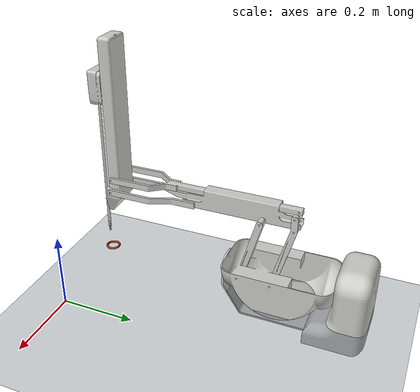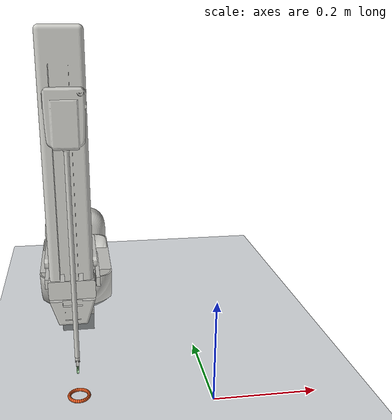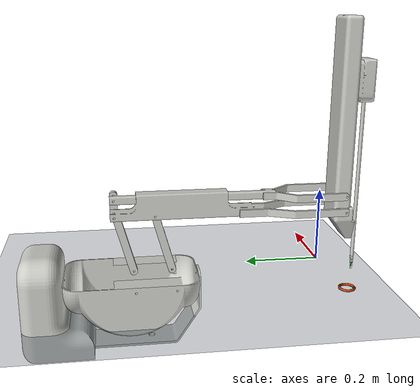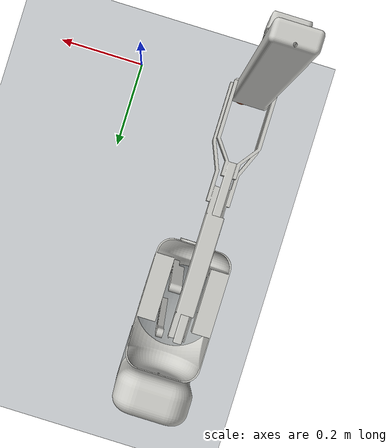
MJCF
<mujoco model="dvrk_psm_official_control">
  <compiler angle="radian" meshdir="../../Assest/psm_official" autolimits="true" />
  <option timestep="0.002" iterations="80" integrator="implicitfast" />
  <statistic center="-0.25 0 0.12" extent="1.2" />
  <visual>
    <headlight diffuse="0.6 0.6 0.6" ambient="0.3 0.3 0.3" specular="0 0 0" />
    <global azimuth="135" elevation="-20" />
  </visual>
  <asset>
    <texture type="skybox" builtin="gradient" rgb1="0.3 0.45 0.65" rgb2="0 0 0" width="512" height="3072" />
    <material name="psm_mat" rgba="0.8 0.8 0.78 1" specular="0.25" shininess="0.4" />
    <mesh name="mesh_0_psm_base" file="converted_meshes/meshes/Classic/PSM/psm_base.obj" />
    <mesh name="mesh_1_outer_yaw" file="converted_meshes/meshes/Classic/PSM/outer_yaw.obj" />
    <mesh name="mesh_2_outer_pitch_back" file="converted_meshes/meshes/Classic/PSM/outer_pitch_back.obj" />
    <mesh name="mesh_3_outer_pitch_front" file="converted_meshes/meshes/Classic/PSM/outer_pitch_front.obj" />
    <mesh name="mesh_4_outer_pitch_bottom" file="converted_meshes/meshes/Classic/PSM/outer_pitch_bottom.obj" />
    <mesh name="mesh_5_outer_pitch_top" file="converted_meshes/meshes/Classic/PSM/outer_pitch_top.obj" />
    <mesh name="mesh_6_outer_insertion" file="converted_meshes/meshes/Classic/PSM/outer_insertion.obj" />
    <mesh name="mesh_7_tool_main" file="converted_meshes/meshes/Classic/PSM/tool_main.obj" />
    <mesh name="mesh_8_tool_wrist_link" file="converted_meshes/meshes/Classic/PSM/tool_wrist_link.obj" />
    <mesh name="mesh_9_tool_wrist_shaft_link" file="converted_meshes/meshes/Classic/PSM/tool_wrist_shaft_link.obj" />
    <mesh name="mesh_10_tool_wrist_sca_link" file="converted_meshes/meshes/Classic/PSM/tool_wrist_sca_link.obj" />
    <mesh name="mesh_11_tool_wrist_sca_shaft_link" file="converted_meshes/meshes/Classic/PSM/tool_wrist_sca_shaft_link.obj" />
    <mesh name="mesh_12_tool_wrist_sca_link_2" file="converted_meshes/meshes/Classic/PSM/tool_wrist_sca_link_2.obj" />
  </asset>
  <worldbody>
    <light pos="0 0 1.5" dir="0 0 -1" directional="true" />
    <geom name="floor" type="plane" size="1 1 0.01" rgba="0.25 0.3 0.35 1" />
    <body name="psm_base" pos="-0.25 0 0.088" quat="6.12323399574e-17 0 0 1">
      <inertial pos="0 0 0" mass="0.02" diaginertia="0.0001 0.0001 0.0001" />
      <geom name="psm_base_visual_0" type="mesh" mesh="mesh_0_psm_base" material="psm_mat" pos="0.039 -0.40788 -0.07879" quat="-2.59734346696e-06 -2.59735300756e-06 0.707108079855 0.707105482506" contype="0" conaffinity="0" group="2" density="0" />
      <body name="outer_yaw" pos="0.0 0.0 0.0" quat="0.499998163397 0.500001836603 -0.499999999997 0.499999999997">
        <inertial pos="0 0 0" mass="0.02" diaginertia="0.0001 0.0001 0.0001" />
        <joint name="yaw" type="hinge" axis="0 0 1" range="-1.5707 1.5707" damping="2" armature="0.02" frictionloss="0.01" />
        <geom name="outer_yaw_visual_0" type="mesh" mesh="mesh_1_outer_yaw" material="psm_mat" pos="0.0125 0 0.5265" quat="-2.59734346696e-06 0.707105482506 0.707108079855 -2.59735300756e-06" contype="0" conaffinity="0" group="2" density="0" />
        <body name="outer_pitch" pos="0 0 0" quat="0.499998163397 -0.499999999997 -0.499999999997 -0.500001836603">
          <inertial pos="0 0 0" mass="0.02" diaginertia="0.0001 0.0001 0.0001" />
          <joint name="pitch" type="hinge" axis="0 0 1" range="-0.7854 0.7854" damping="2" armature="0.02" frictionloss="0.01" />
          <body name="tool_main" pos="0 0.4318 0" quat="0.707105482511 0.707108079859 0 0">
            <inertial pos="0 0 0" mass="0.02" diaginertia="0.0001 0.0001 0.0001" />
            <joint name="insertion" type="slide" axis="0 0 1" range="0 0.240" damping="2" armature="0.02" frictionloss="0.01" />
            <geom name="tool_main_visual_0" type="mesh" mesh="mesh_7_tool_main" material="psm_mat" pos="0 0 0.041" quat="0.707105482511 0 0 0.707108079859" contype="0" conaffinity="0" group="2" density="0" />
            <body name="tool_wrist" pos="0 0 0.4162" quat="1 0 0 0">
              <inertial pos="0 0 0" mass="0.02" diaginertia="0.0001 0.0001 0.0001" />
              <joint name="roll" type="hinge" axis="0 0 1" range="-2.2689 2.2689" damping="2" armature="0.02" frictionloss="0.01" />
              <geom name="tool_wrist_visual_0" type="mesh" mesh="mesh_8_tool_wrist_link" material="psm_mat" pos="0 0 -0.0091" quat="0.707105482511 0 0 0.707108079859" contype="0" conaffinity="0" group="2" density="0" />
              <body name="wrist_shaft" pos="0 0 0.0" quat="1 0 0 0">
                <inertial pos="0 0 0" mass="0.02" diaginertia="0.0001 0.0001 0.0001" />
                <geom name="wrist_shaft_visual_0" type="mesh" mesh="mesh_9_tool_wrist_shaft_link" material="psm_mat" pos="0 0.00401 0" quat="0.707105482511 0.707108079859 0 0" contype="0" conaffinity="0" group="2" density="0" />
                <body name="wrist_sca" pos="0 0 0" quat="0.499998163397 -0.499999999997 -0.499999999997 -0.500001836603">
                  <inertial pos="0 0 0" mass="0.02" diaginertia="0.0001 0.0001 0.0001" />
                  <joint name="wrist_pitch" type="hinge" axis="0 0 1" range="-1.5707 1.5707" damping="2" armature="0.02" frictionloss="0.01" />
                  <geom name="wrist_sca_visual_0" type="mesh" mesh="mesh_10_tool_wrist_sca_link" material="psm_mat" pos="0.0051 0.0032 0" quat="-2.59734346696e-06 -2.59735300756e-06 0.707105482506 -0.707108079855" contype="0" conaffinity="0" group="2" density="0" />
                  <body name="sca_shaft" pos="0.0091 0 0" quat="0.499998163397 -0.499999999997 -0.499999999997 -0.500001836603">
                    <inertial pos="0 0 0" mass="0.02" diaginertia="0.0001 0.0001 0.0001" />
                    <joint name="wrist_yaw" type="hinge" axis="0 0 1" range="-1.3963 1.3963" damping="2" armature="0.02" frictionloss="0.01" />
                    <geom name="sca_shaft_visual_0" type="mesh" mesh="mesh_11_tool_wrist_sca_shaft_link" material="psm_mat" pos="0 -0.0002 -0.0025" quat="1 0 0 0" contype="0" conaffinity="0" group="2" density="0" />
                    <body name="sca_ee_0" pos="0 0 0" quat="1 0 0 0">
                      <inertial pos="0 0 0" mass="0.02" diaginertia="0.0001 0.0001 0.0001" />
                      <joint name="jaw" type="hinge" axis="0 0 1" range="0 1.5707" damping="2" armature="0.02" frictionloss="0.01" />
                    </body>
                    <body name="sca_ee_1" pos="0 0 0" quat="1 0 0 0">
                      <inertial pos="0 0 0" mass="0.02" diaginertia="0.0001 0.0001 0.0001" />
                      <joint name="jaw_mimic_1" type="hinge" axis="0 0 1" range="-1.5707 1.5707" damping="2" armature="0.02" frictionloss="0.01" />
                      <geom name="sca_ee_1_visual_0" type="mesh" mesh="mesh_12_tool_wrist_sca_link_2" material="psm_mat" pos="0 0 0" quat="1 0 0 0" contype="0" conaffinity="0" group="2" density="0" />
                      <geom name="sca_ee_1_col" type="box" pos="0.0007 0.0051 0" size="0.0014 0.0102 0.0018" rgba="0.2 0.9 0.2 0.35" mass="0.0005" contype="1" conaffinity="1" condim="4" friction="1.0 1.0 0.01" solref="0.008 1" solimp="0.95 0.99 0.001 0.5 2" />
                    </body>
                    <body name="sca_ee_2" pos="0 0 0" quat="1 0 0 0">
                      <inertial pos="0 0 0" mass="0.02" diaginertia="0.0001 0.0001 0.0001" />
                      <joint name="jaw_mimic_2" type="hinge" axis="0 0 1" range="-1.5707 1.5707" damping="2" armature="0.02" frictionloss="0.01" />
                      <geom name="sca_ee_2_visual_0" type="mesh" mesh="mesh_12_tool_wrist_sca_link_2" material="psm_mat" pos="0 0 0" quat="-0.00500365232585 -0 0.999987481653 -0" contype="0" conaffinity="0" group="2" density="0" />
                      <geom name="sca_ee_2_col" type="box" pos="-0.0007 0.0051 0" size="0.0014 0.0102 0.0018" rgba="0.2 0.9 0.2 0.35" mass="0.0005" contype="1" conaffinity="1" condim="4" friction="1.0 1.0 0.01" solref="0.008 1" solimp="0.95 0.99 0.001 0.5 2" />
                    </body>
                    <body name="tool_tip" pos="0 0.0102 0" quat="0.5 -0.5 0.5 0.5">
                      <inertial pos="0 0 0" mass="0.02" diaginertia="0.0001 0.0001 0.0001" />
                    </body>
                  </body>
                </body>
              </body>
            </body>
          </body>
        </body>
        <body name="outer_pitch_back" pos="0 0.0295 0.5185" quat="0.499998163397 -0.499999999997 -0.499999999997 -0.500001836603">
          <inertial pos="0 0 0" mass="0.02" diaginertia="0.0001 0.0001 0.0001" />
          <joint name="pitch_1" type="hinge" axis="0 0 1" range="-3.141592653589793 3.141592653589793" damping="2" armature="0.02" frictionloss="0.01" />
          <geom name="outer_pitch_back_visual_0" type="mesh" mesh="mesh_2_outer_pitch_back" material="psm_mat" pos="0 0 0" quat="0.99081431434 0 0 -0.135229414325" contype="0" conaffinity="0" group="2" density="0" />
          <body name="outer_pitch_bottom" pos="0.04178 0.15007 -0.0137" quat="1 0 0 0">
            <inertial pos="0 0 0" mass="0.02" diaginertia="0.0001 0.0001 0.0001" />
            <joint name="pitch_3" type="hinge" axis="0 0 1" range="-3.141592653589793 3.141592653589793" damping="2" armature="0.02" frictionloss="0.01" />
            <geom name="outer_pitch_bottom_visual_0" type="mesh" mesh="mesh_4_outer_pitch_bottom" material="psm_mat" pos="0.009 0 0" quat="0.707105482511 0 -0.707108079859 0" contype="0" conaffinity="0" group="2" density="0" />
            <body name="outer_insertion" pos="-0.520 0 -0.0155" quat="1 0 0 0">
              <inertial pos="0 0 0" mass="0.02" diaginertia="0.0001 0.0001 0.0001" />
              <joint name="pitch_5" type="hinge" axis="0 0 1" range="-3.141592653589793 3.141592653589793" damping="2" armature="0.02" frictionloss="0.01" />
              <geom name="outer_insertion_visual_0" type="mesh" mesh="mesh_6_outer_insertion" material="psm_mat" pos="0.02528 0.429 0" quat="0.499998163397 0.500001836603 -0.499999999997 0.499999999997" contype="0" conaffinity="0" group="2" density="0" />
            </body>
          </body>
          <body name="outer_pitch_top" pos="0.04209 0.18695 -0.02412" quat="1 0 0 0">
            <inertial pos="0 0 0" mass="0.02" diaginertia="0.0001 0.0001 0.0001" />
            <joint name="pitch_4" type="hinge" axis="0 0 1" range="-3.141592653589793 3.141592653589793" damping="2" armature="0.02" frictionloss="0.01" />
            <geom name="outer_pitch_top_visual_0" type="mesh" mesh="mesh_5_outer_pitch_top" material="psm_mat" pos="0.009 0 0" quat="0.707105482511 0 -0.707108079859 0" contype="0" conaffinity="0" group="2" density="0" />
          </body>
        </body>
        <body name="outer_pitch_front" pos="0 0.0295 0.4285" quat="0.499998163397 -0.499999999997 -0.499999999997 -0.500001836603">
          <inertial pos="0 0 0" mass="0.02" diaginertia="0.0001 0.0001 0.0001" />
          <joint name="pitch_2" type="hinge" axis="0 0 1" range="-3.141592653589793 3.141592653589793" damping="2" armature="0.02" frictionloss="0.01" />
          <geom name="outer_pitch_front_visual_0" type="mesh" mesh="mesh_3_outer_pitch_front" material="psm_mat" pos="0 0 0" quat="0.99081431434 0 0 -0.135229414325" contype="0" conaffinity="0" group="2" density="0" />
        </body>
      </body>
    </body>
    <body name="capsule32_torus" pos="-0.25 0.006 0.028">
      <freejoint />
      <geom name="torus_capsule_00" type="capsule" fromto="0.018 0 0 0.017654 0.003512 0" size="0.003" rgba="0.9 0.35 0.12 1" mass="0.000078" contype="1" conaffinity="1" friction="1.5 0.2 0.01" solref="0.01 1" solimp="0.9 0.95 0.001" />
      <geom name="torus_capsule_01" type="capsule" fromto="0.017654 0.003512 0 0.01663 0.006888 0" size="0.003" rgba="0.9 0.35 0.12 1" mass="0.000078" contype="1" conaffinity="1" friction="1.5 0.2 0.01" solref="0.01 1" solimp="0.9 0.95 0.001" />
      <geom name="torus_capsule_02" type="capsule" fromto="0.01663 0.006888 0 0.014966 0.01 0" size="0.003" rgba="0.9 0.35 0.12 1" mass="0.000078" contype="1" conaffinity="1" friction="1.5 0.2 0.01" solref="0.01 1" solimp="0.9 0.95 0.001" />
      <geom name="torus_capsule_03" type="capsule" fromto="0.014966 0.01 0 0.012728 0.012728 0" size="0.003" rgba="0.9 0.35 0.12 1" mass="0.000078" contype="1" conaffinity="1" friction="1.5 0.2 0.01" solref="0.01 1" solimp="0.9 0.95 0.001" />
      <geom name="torus_capsule_04" type="capsule" fromto="0.012728 0.012728 0 0.01 0.014966 0" size="0.003" rgba="0.9 0.35 0.12 1" mass="0.000078" contype="1" conaffinity="1" friction="1.5 0.2 0.01" solref="0.01 1" solimp="0.9 0.95 0.001" />
      <geom name="torus_capsule_05" type="capsule" fromto="0.01 0.014966 0 0.006888 0.01663 0" size="0.003" rgba="0.9 0.35 0.12 1" mass="0.000078" contype="1" conaffinity="1" friction="1.5 0.2 0.01" solref="0.01 1" solimp="0.9 0.95 0.001" />
      <geom name="torus_capsule_06" type="capsule" fromto="0.006888 0.01663 0 0.003512 0.017654 0" size="0.003" rgba="0.9 0.35 0.12 1" mass="0.000078" contype="1" conaffinity="1" friction="1.5 0.2 0.01" solref="0.01 1" solimp="0.9 0.95 0.001" />
      <geom name="torus_capsule_07" type="capsule" fromto="0.003512 0.017654 0 0 0.018 0" size="0.003" rgba="0.9 0.35 0.12 1" mass="0.000078" contype="1" conaffinity="1" friction="1.5 0.2 0.01" solref="0.01 1" solimp="0.9 0.95 0.001" />
      <geom name="torus_capsule_08" type="capsule" fromto="0 0.018 0 -0.003512 0.017654 0" size="0.003" rgba="0.9 0.35 0.12 1" mass="0.000078" contype="1" conaffinity="1" friction="1.5 0.2 0.01" solref="0.01 1" solimp="0.9 0.95 0.001" />
      <geom name="torus_capsule_09" type="capsule" fromto="-0.003512 0.017654 0 -0.006888 0.01663 0" size="0.003" rgba="0.9 0.35 0.12 1" mass="0.000078" contype="1" conaffinity="1" friction="1.5 0.2 0.01" solref="0.01 1" solimp="0.9 0.95 0.001" />
      <geom name="torus_capsule_10" type="capsule" fromto="-0.006888 0.01663 0 -0.01 0.014966 0" size="0.003" rgba="0.9 0.35 0.12 1" mass="0.000078" contype="1" conaffinity="1" friction="1.5 0.2 0.01" solref="0.01 1" solimp="0.9 0.95 0.001" />
      <geom name="torus_capsule_11" type="capsule" fromto="-0.01 0.014966 0 -0.012728 0.012728 0" size="0.003" rgba="0.9 0.35 0.12 1" mass="0.000078" contype="1" conaffinity="1" friction="1.5 0.2 0.01" solref="0.01 1" solimp="0.9 0.95 0.001" />
      <geom name="torus_capsule_12" type="capsule" fromto="-0.012728 0.012728 0 -0.014966 0.01 0" size="0.003" rgba="0.9 0.35 0.12 1" mass="0.000078" contype="1" conaffinity="1" friction="1.5 0.2 0.01" solref="0.01 1" solimp="0.9 0.95 0.001" />
      <geom name="torus_capsule_13" type="capsule" fromto="-0.014966 0.01 0 -0.01663 0.006888 0" size="0.003" rgba="0.9 0.35 0.12 1" mass="0.000078" contype="1" conaffinity="1" friction="1.5 0.2 0.01" solref="0.01 1" solimp="0.9 0.95 0.001" />
      <geom name="torus_capsule_14" type="capsule" fromto="-0.01663 0.006888 0 -0.017654 0.003512 0" size="0.003" rgba="0.9 0.35 0.12 1" mass="0.000078" contype="1" conaffinity="1" friction="1.5 0.2 0.01" solref="0.01 1" solimp="0.9 0.95 0.001" />
      <geom name="torus_capsule_15" type="capsule" fromto="-0.017654 0.003512 0 -0.018 0 0" size="0.003" rgba="0.9 0.35 0.12 1" mass="0.000078" contype="1" conaffinity="1" friction="1.5 0.2 0.01" solref="0.01 1" solimp="0.9 0.95 0.001" />
      <geom name="torus_capsule_16" type="capsule" fromto="-0.018 0 0 -0.017654 -0.003512 0" size="0.003" rgba="0.9 0.35 0.12 1" mass="0.000078" contype="1" conaffinity="1" friction="1.5 0.2 0.01" solref="0.01 1" solimp="0.9 0.95 0.001" />
      <geom name="torus_capsule_17" type="capsule" fromto="-0.017654 -0.003512 0 -0.01663 -0.006888 0" size="0.003" rgba="0.9 0.35 0.12 1" mass="0.000078" contype="1" conaffinity="1" friction="1.5 0.2 0.01" solref="0.01 1" solimp="0.9 0.95 0.001" />
      <geom name="torus_capsule_18" type="capsule" fromto="-0.01663 -0.006888 0 -0.014966 -0.01 0" size="0.003" rgba="0.9 0.35 0.12 1" mass="0.000078" contype="1" conaffinity="1" friction="1.5 0.2 0.01" solref="0.01 1" solimp="0.9 0.95 0.001" />
      <geom name="torus_capsule_19" type="capsule" fromto="-0.014966 -0.01 0 -0.012728 -0.012728 0" size="0.003" rgba="0.9 0.35 0.12 1" mass="0.000078" contype="1" conaffinity="1" friction="1.5 0.2 0.01" solref="0.01 1" solimp="0.9 0.95 0.001" />
      <geom name="torus_capsule_20" type="capsule" fromto="-0.012728 -0.012728 0 -0.01 -0.014966 0" size="0.003" rgba="0.9 0.35 0.12 1" mass="0.000078" contype="1" conaffinity="1" friction="1.5 0.2 0.01" solref="0.01 1" solimp="0.9 0.95 0.001" />
      <geom name="torus_capsule_21" type="capsule" fromto="-0.01 -0.014966 0 -0.006888 -0.01663 0" size="0.003" rgba="0.9 0.35 0.12 1" mass="0.000078" contype="1" conaffinity="1" friction="1.5 0.2 0.01" solref="0.01 1" solimp="0.9 0.95 0.001" />
      <geom name="torus_capsule_22" type="capsule" fromto="-0.006888 -0.01663 0 -0.003512 -0.017654 0" size="0.003" rgba="0.9 0.35 0.12 1" mass="0.000078" contype="1" conaffinity="1" friction="1.5 0.2 0.01" solref="0.01 1" solimp="0.9 0.95 0.001" />
      <geom name="torus_capsule_23" type="capsule" fromto="-0.003512 -0.017654 0 -0 -0.018 0" size="0.003" rgba="0.9 0.35 0.12 1" mass="0.000078" contype="1" conaffinity="1" friction="1.5 0.2 0.01" solref="0.01 1" solimp="0.9 0.95 0.001" />
      <geom name="torus_capsule_24" type="capsule" fromto="-0 -0.018 0 0.003512 -0.017654 0" size="0.003" rgba="0.9 0.35 0.12 1" mass="0.000078" contype="1" conaffinity="1" friction="1.5 0.2 0.01" solref="0.01 1" solimp="0.9 0.95 0.001" />
      <geom name="torus_capsule_25" type="capsule" fromto="0.003512 -0.017654 0 0.006888 -0.01663 0" size="0.003" rgba="0.9 0.35 0.12 1" mass="0.000078" contype="1" conaffinity="1" friction="1.5 0.2 0.01" solref="0.01 1" solimp="0.9 0.95 0.001" />
      <geom name="torus_capsule_26" type="capsule" fromto="0.006888 -0.01663 0 0.01 -0.014966 0" size="0.003" rgba="0.9 0.35 0.12 1" mass="0.000078" contype="1" conaffinity="1" friction="1.5 0.2 0.01" solref="0.01 1" solimp="0.9 0.95 0.001" />
      <geom name="torus_capsule_27" type="capsule" fromto="0.01 -0.014966 0 0.012728 -0.012728 0" size="0.003" rgba="0.9 0.35 0.12 1" mass="0.000078" contype="1" conaffinity="1" friction="1.5 0.2 0.01" solref="0.01 1" solimp="0.9 0.95 0.001" />
      <geom name="torus_capsule_28" type="capsule" fromto="0.012728 -0.012728 0 0.014966 -0.01 0" size="0.003" rgba="0.9 0.35 0.12 1" mass="0.000078" contype="1" conaffinity="1" friction="1.5 0.2 0.01" solref="0.01 1" solimp="0.9 0.95 0.001" />
      <geom name="torus_capsule_29" type="capsule" fromto="0.014966 -0.01 0 0.01663 -0.006888 0" size="0.003" rgba="0.9 0.35 0.12 1" mass="0.000078" contype="1" conaffinity="1" friction="1.5 0.2 0.01" solref="0.01 1" solimp="0.9 0.95 0.001" />
      <geom name="torus_capsule_30" type="capsule" fromto="0.01663 -0.006888 0 0.017654 -0.003512 0" size="0.003" rgba="0.9 0.35 0.12 1" mass="0.000078" contype="1" conaffinity="1" friction="1.5 0.2 0.01" solref="0.01 1" solimp="0.9 0.95 0.001" />
      <geom name="torus_capsule_31" type="capsule" fromto="0.017654 -0.003512 0 0.018 0 0" size="0.003" rgba="0.9 0.35 0.12 1" mass="0.000078" contype="1" conaffinity="1" friction="1.5 0.2 0.01" solref="0.01 1" solimp="0.9 0.95 0.001" />
    </body>
  </worldbody>
  <equality>
    <joint name="eq_pitch_1" joint1="pitch_1" joint2="pitch" polycoef="0 1 0 0 0" solref="0.005 1" />
    <joint name="eq_pitch_2" joint1="pitch_2" joint2="pitch" polycoef="0 1 0 0 0" solref="0.005 1" />
    <joint name="eq_pitch_3" joint1="pitch_3" joint2="pitch" polycoef="0 -1 0 0 0" solref="0.005 1" />
    <joint name="eq_pitch_4" joint1="pitch_4" joint2="pitch" polycoef="0 -1 0 0 0" solref="0.005 1" />
    <joint name="eq_pitch_5" joint1="pitch_5" joint2="pitch" polycoef="0 1 0 0 0" solref="0.005 1" />
    <joint name="eq_jaw_mimic_1" joint1="jaw_mimic_1" joint2="jaw" polycoef="0 0.5 0 0 0" solref="0.005 1" />
    <joint name="eq_jaw_mimic_2" joint1="jaw_mimic_2" joint2="jaw" polycoef="0 -0.5 0 0 0" solref="0.005 1" />
  </equality>
  <actuator>
    <position name="ctrl_yaw" joint="yaw" kp="60" ctrlrange="-1.5707 1.5707" forcelimited="true" forcerange="-80 80" />
    <position name="ctrl_pitch" joint="pitch" kp="60" ctrlrange="-0.7854 0.7854" forcelimited="true" forcerange="-80 80" />
    <position name="ctrl_insertion" joint="insertion" kp="400" ctrlrange="0 0.240" forcelimited="true" forcerange="-120 120" />
    <position name="ctrl_roll" joint="roll" kp="60" ctrlrange="-2.2689 2.2689" forcelimited="true" forcerange="-80 80" />
    <position name="ctrl_wrist_pitch" joint="wrist_pitch" kp="60" ctrlrange="-1.5707 1.5707" forcelimited="true" forcerange="-80 80" />
    <position name="ctrl_wrist_yaw" joint="wrist_yaw" kp="60" ctrlrange="-1.3963 1.3963" forcelimited="true" forcerange="-80 80" />
    <position name="ctrl_jaw" joint="jaw" kp="15" ctrlrange="0 1.5707" forcelimited="true" forcerange="-20 20" />
  </actuator>
  <contact>
    <exclude name="exclude_jaw_pair" body1="sca_ee_1" body2="sca_ee_2" />
  </contact>
</mujoco>
